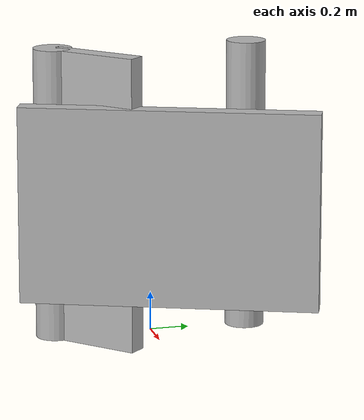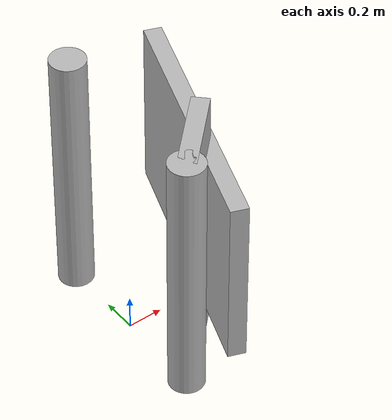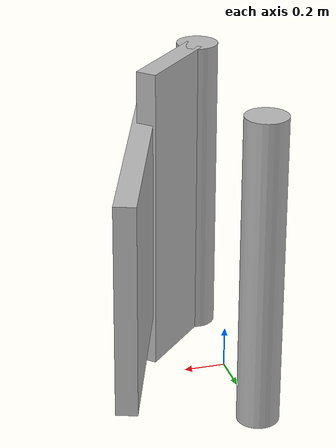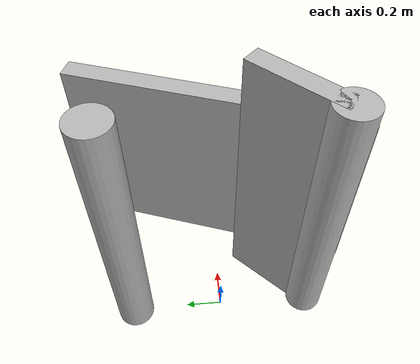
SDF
<?xml version="1.0" ?>
<sdf version="1.6">
  <model name="gate">
    <!-- Left Cylinder -->
    <link name="left_cylinder">
      <pose>0 -0.5 0.75 0 0 0</pose>
      <collision name="left_cylinder_collision">
        <geometry>
          <cylinder>
            <radius>0.1</radius>
            <length>1.5</length>
          </cylinder>
        </geometry>
      </collision>
      <visual name="left_cylinder_visual">
        <geometry>
          <cylinder>
            <radius>0.1</radius>
            <length>1.5</length>
          </cylinder>
        </geometry>
      </visual>
    </link>

    <!-- Right Cylinder -->
    <link name="right_cylinder">
      <pose>0 0.5 0.75 0 0 0</pose>
      <collision name="right_cylinder_collision">
        <geometry>
          <cylinder>
            <radius>0.1</radius>
            <length>1.5</length>
          </cylinder>
        </geometry>
      </collision>
      <visual name="right_cylinder_visual">
        <geometry>
          <cylinder>
            <radius>0.1</radius>
            <length>1.5</length>
          </cylinder>
        </geometry>
      </visual>
    </link>

    <!-- Left Door -->
    <link name="left_door">
      <pose>0.1768 -0.3232 0.75 0 0 0.7854</pose>
      <collision name="left_door_collision">
        <geometry>
          <box>
            <size> 0.5 0.1 1.5</size>
          </box>
        </geometry>
      </collision>
      <visual name="left_door_visual">
        <geometry>
          <box>
            <size> 0.5 0.1 1.5</size>
          </box>
        </geometry>
      </visual>
    </link>

    <!-- Right Door -->
    <link name="right_door">
      <pose>0.425 0 0.75 0 0 1.2217</pose>
      <collision name="right_door_collision">
        <geometry>
          <box>
            <size>1.5 0.1 1</size>
          </box>
        </geometry>
      </collision>
      <visual name="right_door_visual">
        <geometry>
          <box>
            <size>1.5 0.1 1</size>
          </box>
        </geometry>
      </visual>
    </link>
  </model>
</sdf>
